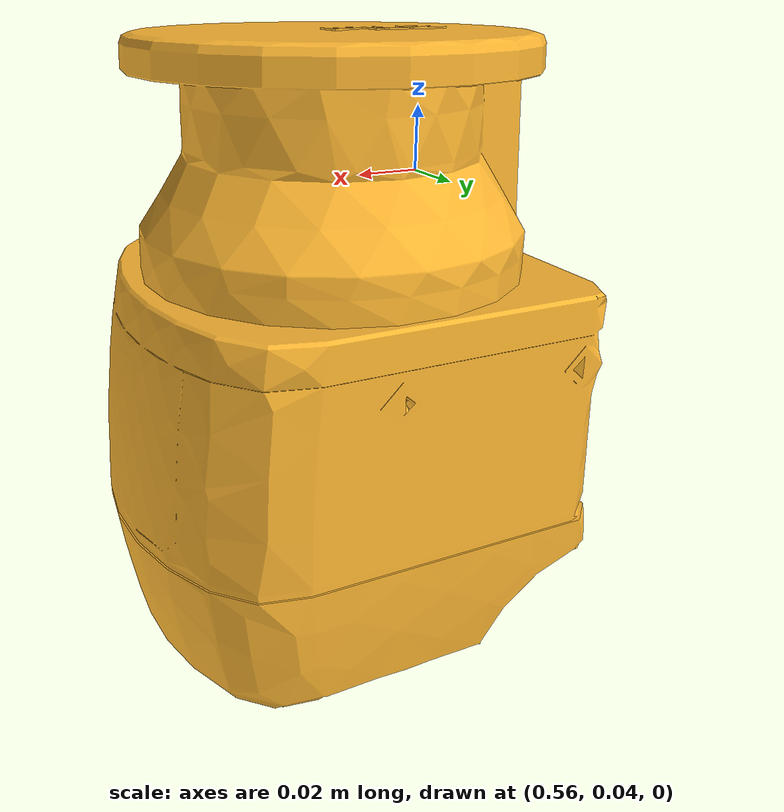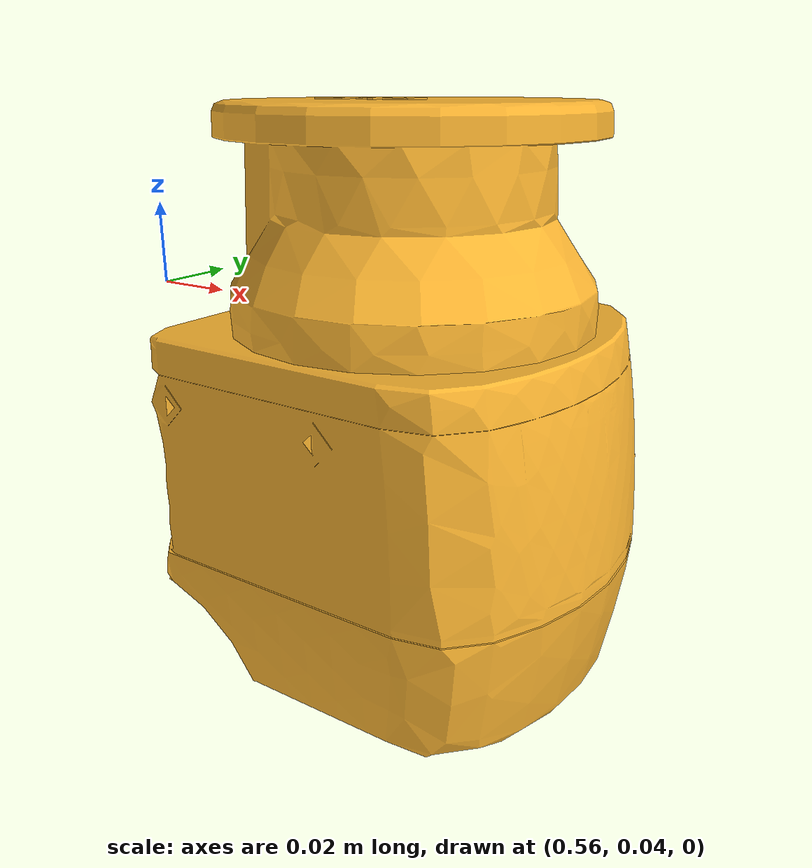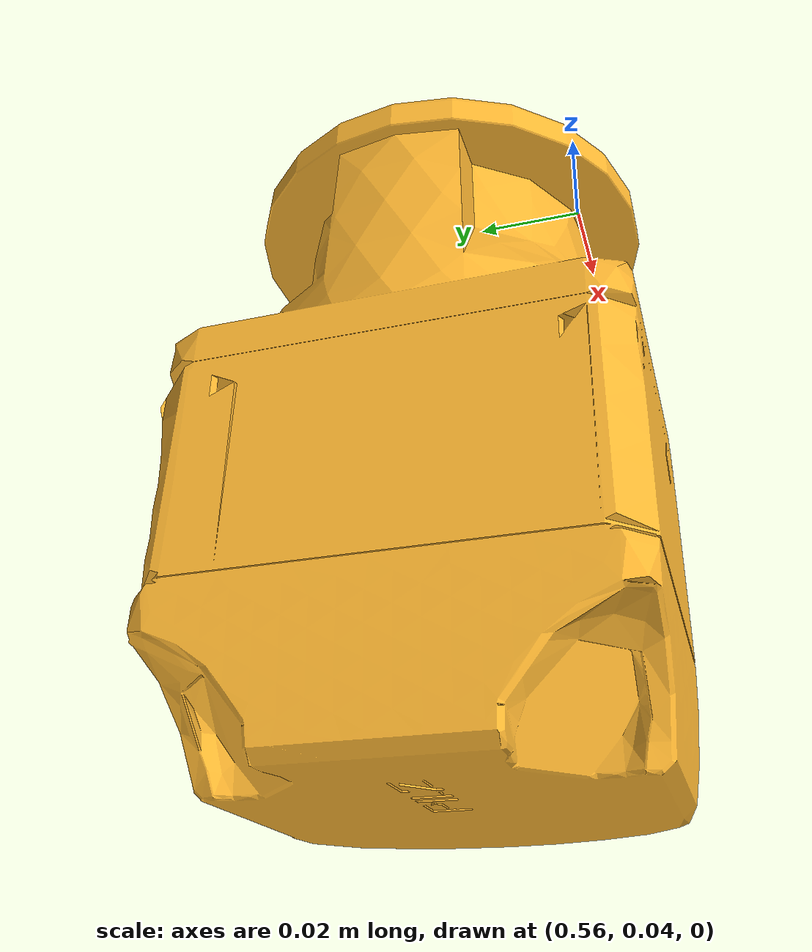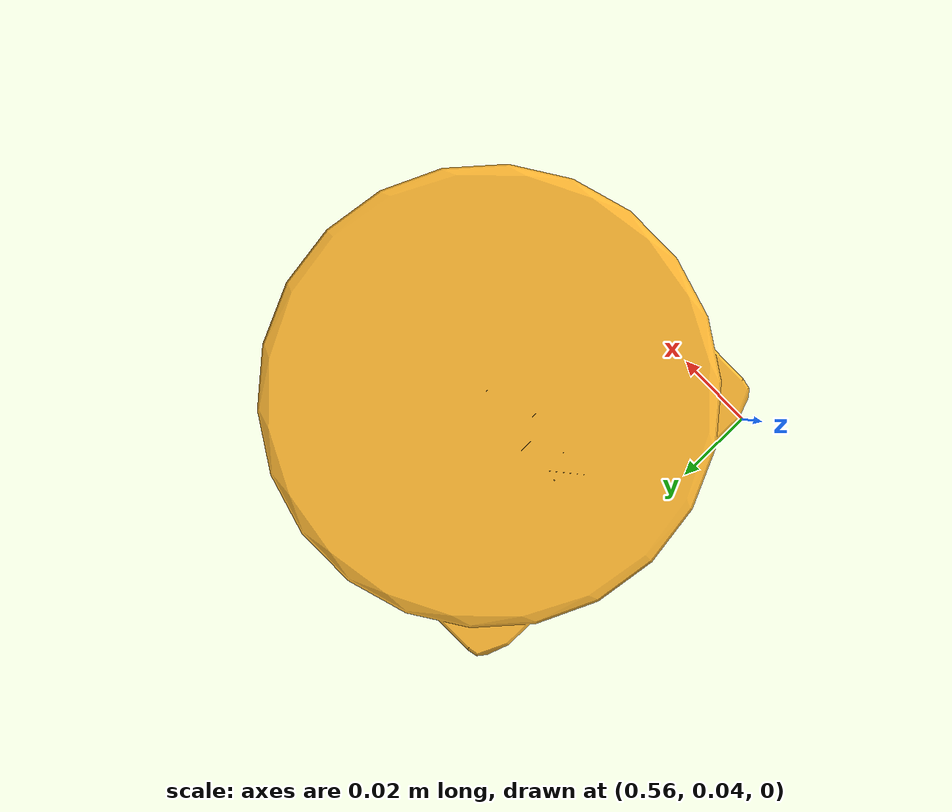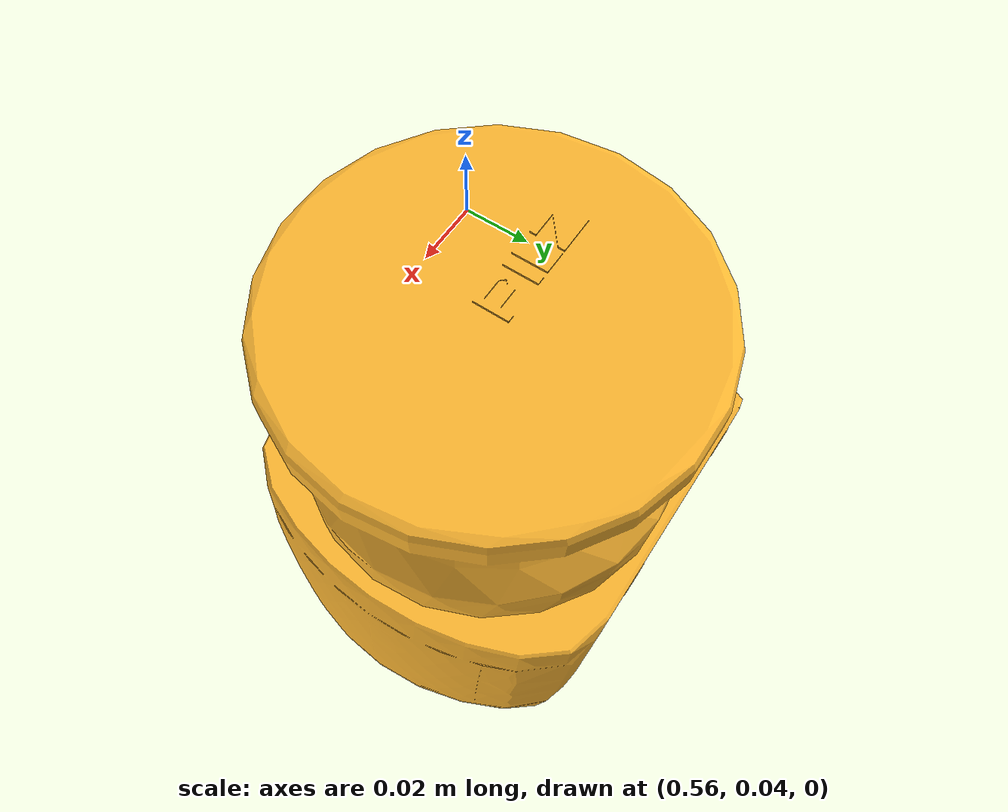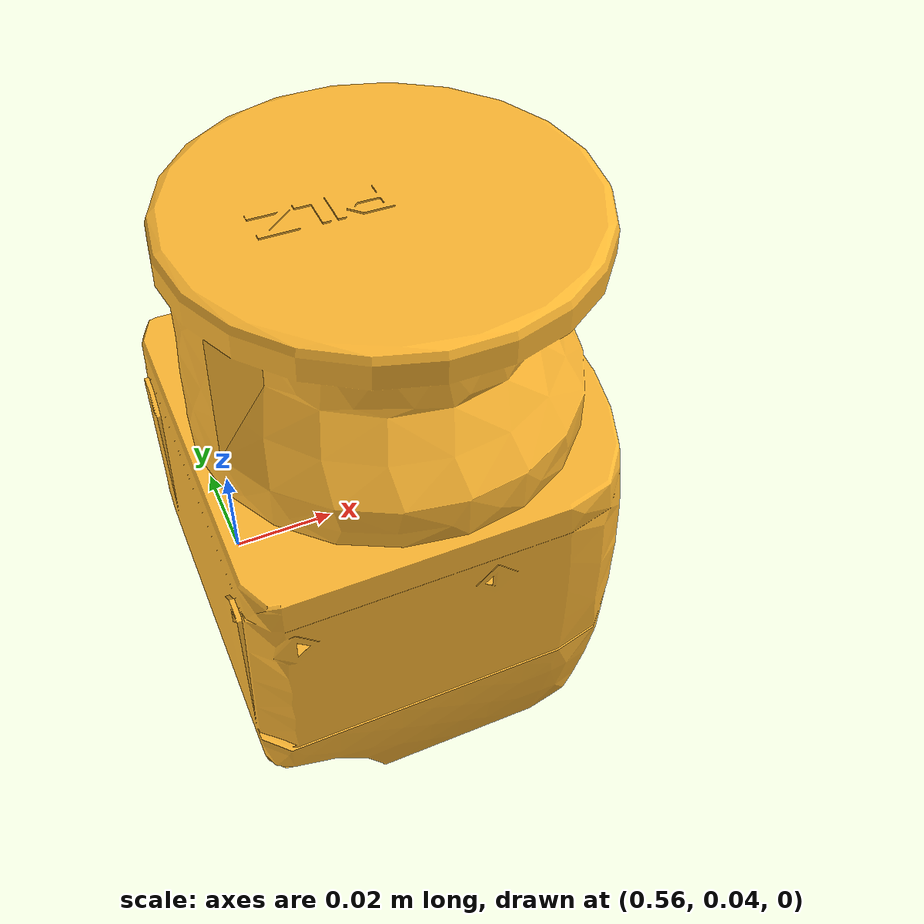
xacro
<?xml version="1.0"?>
<robot xmlns:xacro="http://ros.org/wiki/xacro" name="psen_scan">

  <!-- PSENscan arguments -->
  <xacro:arg name="nr_scanners" default="0"/>
  <xacro:arg name="prefix" default="laser_1"/>
  <xacro:arg name="prefix_sub0" default="laser_1_Subscriber0"/>
  <xacro:arg name="prefix_sub1" default="laser_1_Subscriber1"/>
  <xacro:arg name="prefix_sub2" default="laser_1_Subscriber2"/>

  <!-- Number of Subscribers -->
  <xacro:property name="nr_sub" value="$(arg nr_scanners)"/>

  <xacro:include filename="$(find psen_scan_v2)/urdf/xacros/psen_scan.urdf.xacro" />

  <link name="reference_link"/>

  <!-- PSENscan Master -->
  <xacro:psen_scan prefix="$(arg prefix)" parent="reference_link">
    <origin xyz="0.5 0 0" rpy="0 0 0" />
  </xacro:psen_scan>

  <!-- PSENscan Subscriber0 -->
  <xacro:if value="${nr_sub >= 1}">
    <xacro:psen_scan prefix="$(arg prefix_sub0)" parent="reference_link">
      <origin xyz="-0.5 0 0" rpy="0 0 3.14" />
    </xacro:psen_scan>
  </xacro:if>

  <!-- PSENscan Subscriber1 -->
  <xacro:if value="${nr_sub >= 2}">
    <xacro:psen_scan prefix="$(arg prefix_sub1)" parent="reference_link">
      <origin xyz="0 0.5 0" rpy="0 0 1.57" />
    </xacro:psen_scan>
  </xacro:if>

  <!-- PSENscan Subscriber2 -->
  <xacro:if value="${nr_sub == 3}">
    <xacro:psen_scan prefix="$(arg prefix_sub2)" parent="reference_link">
      <origin xyz="0 -0.5 0" rpy="0 0 -1.57" />
    </xacro:psen_scan>
  </xacro:if>

</robot>

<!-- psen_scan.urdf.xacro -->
<robot xmlns:xacro="http://ros.org/wiki/xacro">
  <xacro:macro name="psen_scan" params="prefix parent *origin">
    <xacro:property name="mass" value="1.53" /> <!-- src datasheet p 96 -->
    <xacro:property name="radius" value="0.051" /> <!-- src datasheet p 96 -->
    <xacro:property name="height" value="0.152" /> <!-- src datasheet p 96 -->
    <xacro:property name="dist_scanning_plane_top" value="0.0377" /> <!-- src datasheet p 96 -->
    <xacro:property name="dist_scanning_axis_rear" value="0.0525" /> <!-- src datasheet p 96 -->

    <joint name="${prefix}_joint" type="fixed">
      <parent link="reference_link" />
      <child link="${prefix}_mount_link" />
      <xacro:insert_block name="origin" />
    </joint>

    <!-- Location of mounting point at the lower back of device -->
    <link name="${prefix}_mount_link"/>

    <joint name="${prefix}_body_joint" type="fixed">
      <parent link="${prefix}_mount_link" />
      <child link="${prefix}_body_link" />
      <origin rpy="0 0 0" xyz="${radius} 0 0"/>
    </joint>

    <!-- Location of scanner body -->
    <link name="${prefix}_body_link">
      <visual>
        <origin xyz="-0.016 0 -0.039" rpy="0 0 3.14" />
        <geometry>
          <mesh filename="package://psen_scan_v2/urdf/meshes/PSENscan.dae" scale="0.001 0.001 0.001"/>
        </geometry>
        <material name="pilz_yellow" >
          <color rgba="1.0 0.722 0.196 1.0" />
        </material>
      </visual>
      <collision>
        <origin xyz="-0.016 0 -0.039" rpy="0 0 3.14" />
        <geometry>
          <mesh filename="package://psen_scan_v2/urdf/meshes/PSENscan.dae" scale="0.001 0.001 0.001"/>
        </geometry>
      </collision>
      <inertial>
        <mass value="${mass}" />
        <origin xyz="0 0 0" />
        <inertia ixx="${1 / 12 * mass * (3 * radius * radius + height * height)}" ixy="0.0" ixz="0.0"
          iyy="${1 / 12 * mass * (3 * radius * radius + height * height)}" iyz="0.0"
          izz="${.5 * mass * (radius * radius)}" />
      </inertial>
    </link>

    <joint name="${prefix}_scan_joint" type="fixed">
      <parent link="${prefix}_body_link" />
      <child link="${prefix}" />
      <origin rpy="${pi} 0 0" xyz="0 ${radius - dist_scanning_axis_rear} ${height / 2 - dist_scanning_plane_top}"/>
    </joint>

    <!-- This is the location of the laser scan -->
    <link name="${prefix}"/>
  </xacro:macro>
</robot>
